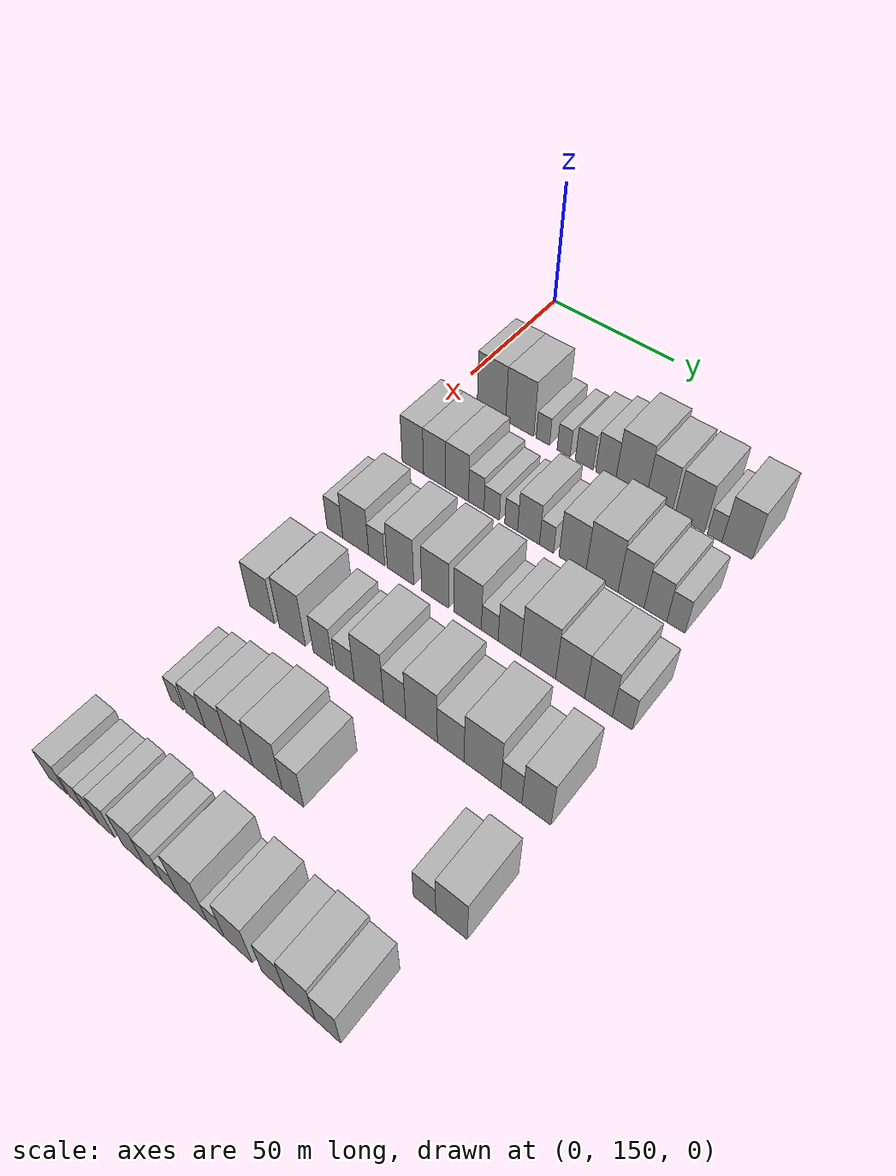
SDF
<sdf version="1.6">
 <world name="default">
  <model name="building_79">
   <static>1</static>
   <pose>50.0000 166.3033 0 0.000000 0.000000 0.000000</pose>
   <link name="link">
    <pose>0 0 12.00 0 0 0</pose>
    <collision name="collision"><geometry><box><size>20.0000 11.7883 24.0000</size></box></geometry></collision>
    <visual name="visual">
     <cast_shadows>0</cast_shadows>
     <geometry><box><size>20.0000 11.7883 24.0000</size></box></geometry>
     <material>
      <script>
       <uri>model://HANNAS_wall/materials/scripts</uri>
       <uri>model://HANNAS_wall/materials/textures</uri>
       <name>vrc/HANNAS_wall</name>
      </script>
     </material>
    </visual>
   </link>
  </model>
  <model name="building_80">
   <static>1</static>
   <pose>50.0000 177.9087 0 0.000000 0.000000 0.000000</pose>
   <link name="link">
    <pose>0 0 12.00 0 0 0</pose>
    <collision name="collision"><geometry><box><size>20.0000 11.4226 24.0000</size></box></geometry></collision>
    <visual name="visual">
     <cast_shadows>0</cast_shadows>
     <geometry><box><size>20.0000 11.4226 24.0000</size></box></geometry>
     <material>
      <script>
       <uri>model://HANNAS_wall/materials/scripts</uri>
       <uri>model://HANNAS_wall/materials/textures</uri>
       <name>vrc/HANNAS_wall</name>
      </script>
     </material>
    </visual>
   </link>
  </model>
  <model name="building_81">
   <static>1</static>
   <pose>50.0000 187.2695 0 0.000000 0.000000 0.000000</pose>
   <link name="link">
    <pose>0 0 6.00 0 0 0</pose>
    <collision name="collision"><geometry><box><size>20.0000 5.2989 12.0000</size></box></geometry></collision>
    <visual name="visual">
     <cast_shadows>0</cast_shadows>
     <geometry><box><size>20.0000 5.2989 12.0000</size></box></geometry>
     <material>
      <script>
       <uri>model://HANNAS_wall/materials/scripts</uri>
       <uri>model://HANNAS_wall/materials/textures</uri>
       <name>vrc/HANNAS_wall</name>
      </script>
     </material>
    </visual>
   </link>
  </model>
  <model name="building_82">
   <static>1</static>
   <pose>50.0000 195.4602 0 0.000000 0.000000 0.000000</pose>
   <link name="link">
    <pose>0 0 6.00 0 0 0</pose>
    <collision name="collision"><geometry><box><size>20.0000 5.0826 12.0000</size></box></geometry></collision>
    <visual name="visual">
     <cast_shadows>0</cast_shadows>
     <geometry><box><size>20.0000 5.0826 12.0000</size></box></geometry>
     <material>
      <script>
       <uri>model://HANNAS_wall/materials/scripts</uri>
       <uri>model://HANNAS_wall/materials/textures</uri>
       <name>vrc/HANNAS_wall</name>
      </script>
     </material>
    </visual>
   </link>
  </model>
  <model name="building_83">
   <static>1</static>
   <pose>50.0000 203.4119 0 0.000000 0.000000 0.000000</pose>
   <link name="link">
    <pose>0 0 7.50 0 0 0</pose>
    <collision name="collision"><geometry><box><size>20.0000 6.8208 15.0000</size></box></geometry></collision>
    <visual name="visual">
     <cast_shadows>0</cast_shadows>
     <geometry><box><size>20.0000 6.8208 15.0000</size></box></geometry>
     <material>
      <script>
       <uri>model://HANNAS_wall/materials/scripts</uri>
       <uri>model://HANNAS_wall/materials/textures</uri>
       <name>vrc/HANNAS_wall</name>
      </script>
     </material>
    </visual>
   </link>
  </model>
  <model name="building_84">
   <static>1</static>
   <pose>50.0000 211.5135 0 0.000000 0.000000 0.000000</pose>
   <link name="link">
    <pose>0 0 9.00 0 0 0</pose>
    <collision name="collision"><geometry><box><size>20.0000 7.3824 18.0000</size></box></geometry></collision>
    <visual name="visual">
     <cast_shadows>0</cast_shadows>
     <geometry><box><size>20.0000 7.3824 18.0000</size></box></geometry>
     <material>
      <script>
       <uri>model://HANNAS_wall/materials/scripts</uri>
       <uri>model://HANNAS_wall/materials/textures</uri>
       <name>vrc/HANNAS_wall</name>
      </script>
     </material>
    </visual>
   </link>
  </model>
  <model name="building_85">
   <static>1</static>
   <pose>50.0000 220.8676 0 0.000000 0.000000 0.000000</pose>
   <link name="link">
    <pose>0 0 12.00 0 0 0</pose>
    <collision name="collision"><geometry><box><size>20.0000 11.3259 24.0000</size></box></geometry></collision>
    <visual name="visual">
     <cast_shadows>0</cast_shadows>
     <geometry><box><size>20.0000 11.3259 24.0000</size></box></geometry>
     <material>
      <script>
       <uri>model://HANNAS_wall/materials/scripts</uri>
       <uri>model://HANNAS_wall/materials/textures</uri>
       <name>vrc/HANNAS_wall</name>
      </script>
     </material>
    </visual>
   </link>
  </model>
  <model name="building_86">
   <static>1</static>
   <pose>50.0000 231.1917 0 0.000000 0.000000 0.000000</pose>
   <link name="link">
    <pose>0 0 10.50 0 0 0</pose>
    <collision name="collision"><geometry><box><size>20.0000 9.3222 21.0000</size></box></geometry></collision>
    <visual name="visual">
     <cast_shadows>0</cast_shadows>
     <geometry><box><size>20.0000 9.3222 21.0000</size></box></geometry>
     <material>
      <script>
       <uri>model://HANNAS_wall/materials/scripts</uri>
       <uri>model://HANNAS_wall/materials/textures</uri>
       <name>vrc/HANNAS_wall</name>
      </script>
     </material>
    </visual>
   </link>
  </model>
  <model name="building_87">
   <static>1</static>
   <pose>50.0000 242.0632 0 0.000000 0.000000 0.000000</pose>
   <link name="link">
    <pose>0 0 10.50 0 0 0</pose>
    <collision name="collision"><geometry><box><size>20.0000 10.4208 21.0000</size></box></geometry></collision>
    <visual name="visual">
     <cast_shadows>0</cast_shadows>
     <geometry><box><size>20.0000 10.4208 21.0000</size></box></geometry>
     <material>
      <script>
       <uri>model://HANNAS_wall/materials/scripts</uri>
       <uri>model://HANNAS_wall/materials/textures</uri>
       <name>vrc/HANNAS_wall</name>
      </script>
     </material>
    </visual>
   </link>
  </model>
  <model name="building_88">
   <static>1</static>
   <pose>50.0000 250.7900 0 0.000000 0.000000 0.000000</pose>
   <link name="link">
    <pose>0 0 6.00 0 0 0</pose>
    <collision name="collision"><geometry><box><size>20.0000 5.0328 12.0000</size></box></geometry></collision>
    <visual name="visual">
     <cast_shadows>0</cast_shadows>
     <geometry><box><size>20.0000 5.0328 12.0000</size></box></geometry>
     <material>
      <script>
       <uri>model://HANNAS_wall/materials/scripts</uri>
       <uri>model://HANNAS_wall/materials/textures</uri>
       <name>vrc/HANNAS_wall</name>
      </script>
     </material>
    </visual>
   </link>
  </model>
  <model name="building_89">
   <static>1</static>
   <pose>50.0000 258.4701 0 0.000000 0.000000 0.000000</pose>
   <link name="link">
    <pose>0 0 10.50 0 0 0</pose>
    <collision name="collision"><geometry><box><size>20.0000 10.3274 21.0000</size></box></geometry></collision>
    <visual name="visual">
     <cast_shadows>0</cast_shadows>
     <geometry><box><size>20.0000 10.3274 21.0000</size></box></geometry>
     <material>
      <script>
       <uri>model://HANNAS_wall/materials/scripts</uri>
       <uri>model://HANNAS_wall/materials/textures</uri>
       <name>vrc/HANNAS_wall</name>
      </script>
     </material>
    </visual>
   </link>
  </model>
  <model name="building_207">
   <static>1</static>
   <pose>85.0000 161.7518 0 0.000000 0.000000 0.000000</pose>
   <link name="link">
    <pose>0 0 10.50 0 0 0</pose>
    <collision name="collision"><geometry><box><size>20.0000 8.8378 21.0000</size></box></geometry></collision>
    <visual name="visual">
     <cast_shadows>0</cast_shadows>
     <geometry><box><size>20.0000 8.8378 21.0000</size></box></geometry>
     <material>
      <script>
       <uri>model://HANNAS_wall/materials/scripts</uri>
       <uri>model://HANNAS_wall/materials/textures</uri>
       <name>vrc/HANNAS_wall</name>
      </script>
     </material>
    </visual>
   </link>
  </model>
  <model name="building_208">
   <static>1</static>
   <pose>85.0000 170.6619 0 0.000000 0.000000 0.000000</pose>
   <link name="link">
    <pose>0 0 10.50 0 0 0</pose>
    <collision name="collision"><geometry><box><size>20.0000 8.9824 21.0000</size></box></geometry></collision>
    <visual name="visual">
     <cast_shadows>0</cast_shadows>
     <geometry><box><size>20.0000 8.9824 21.0000</size></box></geometry>
     <material>
      <script>
       <uri>model://HANNAS_wall/materials/scripts</uri>
       <uri>model://HANNAS_wall/materials/textures</uri>
       <name>vrc/HANNAS_wall</name>
      </script>
     </material>
    </visual>
   </link>
  </model>
  <model name="building_209">
   <static>1</static>
   <pose>85.0000 179.6695 0 0.000000 0.000000 0.000000</pose>
   <link name="link">
    <pose>0 0 10.50 0 0 0</pose>
    <collision name="collision"><geometry><box><size>20.0000 9.0328 21.0000</size></box></geometry></collision>
    <visual name="visual">
     <cast_shadows>0</cast_shadows>
     <geometry><box><size>20.0000 9.0328 21.0000</size></box></geometry>
     <material>
      <script>
       <uri>model://HANNAS_wall/materials/scripts</uri>
       <uri>model://HANNAS_wall/materials/textures</uri>
       <name>vrc/HANNAS_wall</name>
      </script>
     </material>
    </visual>
   </link>
  </model>
  <model name="building_210">
   <static>1</static>
   <pose>85.0000 187.1967 0 0.000000 0.000000 0.000000</pose>
   <link name="link">
    <pose>0 0 7.50 0 0 0</pose>
    <collision name="collision"><geometry><box><size>20.0000 6.0217 15.0000</size></box></geometry></collision>
    <visual name="visual">
     <cast_shadows>0</cast_shadows>
     <geometry><box><size>20.0000 6.0217 15.0000</size></box></geometry>
     <material>
      <script>
       <uri>model://HANNAS_wall/materials/scripts</uri>
       <uri>model://HANNAS_wall/materials/textures</uri>
       <name>vrc/HANNAS_wall</name>
      </script>
     </material>
    </visual>
   </link>
  </model>
  <model name="building_211">
   <static>1</static>
   <pose>85.0000 193.1685 0 0.000000 0.000000 0.000000</pose>
   <link name="link">
    <pose>0 0 6.00 0 0 0</pose>
    <collision name="collision"><geometry><box><size>20.0000 5.9219 12.0000</size></box></geometry></collision>
    <visual name="visual">
     <cast_shadows>0</cast_shadows>
     <geometry><box><size>20.0000 5.9219 12.0000</size></box></geometry>
     <material>
      <script>
       <uri>model://HANNAS_wall/materials/scripts</uri>
       <uri>model://HANNAS_wall/materials/textures</uri>
       <name>vrc/HANNAS_wall</name>
      </script>
     </material>
    </visual>
   </link>
  </model>
  <model name="building_212">
   <static>1</static>
   <pose>85.0000 200.5698 0 0.000000 0.000000 0.000000</pose>
   <link name="link">
    <pose>0 0 6.00 0 0 0</pose>
    <collision name="collision"><geometry><box><size>20.0000 4.8807 12.0000</size></box></geometry></collision>
    <visual name="visual">
     <cast_shadows>0</cast_shadows>
     <geometry><box><size>20.0000 4.8807 12.0000</size></box></geometry>
     <material>
      <script>
       <uri>model://HANNAS_wall/materials/scripts</uri>
       <uri>model://HANNAS_wall/materials/textures</uri>
       <name>vrc/HANNAS_wall</name>
      </script>
     </material>
    </visual>
   </link>
  </model>
  <model name="building_213">
   <static>1</static>
   <pose>85.0000 207.0691 0 0.000000 0.000000 0.000000</pose>
   <link name="link">
    <pose>0 0 9.00 0 0 0</pose>
    <collision name="collision"><geometry><box><size>20.0000 8.1179 18.0000</size></box></geometry></collision>
    <visual name="visual">
     <cast_shadows>0</cast_shadows>
     <geometry><box><size>20.0000 8.1179 18.0000</size></box></geometry>
     <material>
      <script>
       <uri>model://HANNAS_wall/materials/scripts</uri>
       <uri>model://HANNAS_wall/materials/textures</uri>
       <name>vrc/HANNAS_wall</name>
      </script>
     </material>
    </visual>
   </link>
  </model>
  <model name="building_214">
   <static>1</static>
   <pose>85.0000 213.7032 0 0.000000 0.000000 0.000000</pose>
   <link name="link">
    <pose>0 0 6.00 0 0 0</pose>
    <collision name="collision"><geometry><box><size>20.0000 5.1504 12.0000</size></box></geometry></collision>
    <visual name="visual">
     <cast_shadows>0</cast_shadows>
     <geometry><box><size>20.0000 5.1504 12.0000</size></box></geometry>
     <material>
      <script>
       <uri>model://HANNAS_wall/materials/scripts</uri>
       <uri>model://HANNAS_wall/materials/textures</uri>
       <name>vrc/HANNAS_wall</name>
      </script>
     </material>
    </visual>
   </link>
  </model>
  <model name="building_215">
   <static>1</static>
   <pose>85.0000 223.0862 0 0.000000 0.000000 0.000000</pose>
   <link name="link">
    <pose>0 0 10.50 0 0 0</pose>
    <collision name="collision"><geometry><box><size>20.0000 9.6157 21.0000</size></box></geometry></collision>
    <visual name="visual">
     <cast_shadows>0</cast_shadows>
     <geometry><box><size>20.0000 9.6157 21.0000</size></box></geometry>
     <material>
      <script>
       <uri>model://HANNAS_wall/materials/scripts</uri>
       <uri>model://HANNAS_wall/materials/textures</uri>
       <name>vrc/HANNAS_wall</name>
      </script>
     </material>
    </visual>
   </link>
  </model>
  <model name="building_216">
   <static>1</static>
   <pose>85.0000 233.5058 0 0.000000 0.000000 0.000000</pose>
   <link name="link">
    <pose>0 0 12.00 0 0 0</pose>
    <collision name="collision"><geometry><box><size>20.0000 11.2235 24.0000</size></box></geometry></collision>
    <visual name="visual">
     <cast_shadows>0</cast_shadows>
     <geometry><box><size>20.0000 11.2235 24.0000</size></box></geometry>
     <material>
      <script>
       <uri>model://HANNAS_wall/materials/scripts</uri>
       <uri>model://HANNAS_wall/materials/textures</uri>
       <name>vrc/HANNAS_wall</name>
      </script>
     </material>
    </visual>
   </link>
  </model>
  <model name="building_217">
   <static>1</static>
   <pose>85.0000 243.5644 0 0.000000 0.000000 0.000000</pose>
   <link name="link">
    <pose>0 0 10.50 0 0 0</pose>
    <collision name="collision"><geometry><box><size>20.0000 8.8936 21.0000</size></box></geometry></collision>
    <visual name="visual">
     <cast_shadows>0</cast_shadows>
     <geometry><box><size>20.0000 8.8936 21.0000</size></box></geometry>
     <material>
      <script>
       <uri>model://HANNAS_wall/materials/scripts</uri>
       <uri>model://HANNAS_wall/materials/textures</uri>
       <name>vrc/HANNAS_wall</name>
      </script>
     </material>
    </visual>
   </link>
  </model>
  <model name="building_218">
   <static>1</static>
   <pose>85.0000 251.7752 0 0.000000 0.000000 0.000000</pose>
   <link name="link">
    <pose>0 0 9.00 0 0 0</pose>
    <collision name="collision"><geometry><box><size>20.0000 7.5281 18.0000</size></box></geometry></collision>
    <visual name="visual">
     <cast_shadows>0</cast_shadows>
     <geometry><box><size>20.0000 7.5281 18.0000</size></box></geometry>
     <material>
      <script>
       <uri>model://HANNAS_wall/materials/scripts</uri>
       <uri>model://HANNAS_wall/materials/textures</uri>
       <name>vrc/HANNAS_wall</name>
      </script>
     </material>
    </visual>
   </link>
  </model>
  <model name="building_219">
   <static>1</static>
   <pose>85.0000 258.5435 0 0.000000 0.000000 0.000000</pose>
   <link name="link">
    <pose>0 0 7.50 0 0 0</pose>
    <collision name="collision"><geometry><box><size>20.0000 6.0084 15.0000</size></box></geometry></collision>
    <visual name="visual">
     <cast_shadows>0</cast_shadows>
     <geometry><box><size>20.0000 6.0084 15.0000</size></box></geometry>
     <material>
      <script>
       <uri>model://HANNAS_wall/materials/scripts</uri>
       <uri>model://HANNAS_wall/materials/textures</uri>
       <name>vrc/HANNAS_wall</name>
      </script>
     </material>
    </visual>
   </link>
  </model>
  <model name="building_333">
   <static>1</static>
   <pose>120.0000 160.4133 0 0.000000 0.000000 0.000000</pose>
   <link name="link">
    <pose>0 0 7.50 0 0 0</pose>
    <collision name="collision"><geometry><box><size>20.0000 6.4655 15.0000</size></box></geometry></collision>
    <visual name="visual">
     <cast_shadows>0</cast_shadows>
     <geometry><box><size>20.0000 6.4655 15.0000</size></box></geometry>
     <material>
      <script>
       <uri>model://HANNAS_wall/materials/scripts</uri>
       <uri>model://HANNAS_wall/materials/textures</uri>
       <name>vrc/HANNAS_wall</name>
      </script>
     </material>
    </visual>
   </link>
  </model>
  <model name="building_334">
   <static>1</static>
   <pose>120.0000 168.8353 0 0.000000 0.000000 0.000000</pose>
   <link name="link">
    <pose>0 0 10.50 0 0 0</pose>
    <collision name="collision"><geometry><box><size>20.0000 10.3785 21.0000</size></box></geometry></collision>
    <visual name="visual">
     <cast_shadows>0</cast_shadows>
     <geometry><box><size>20.0000 10.3785 21.0000</size></box></geometry>
     <material>
      <script>
       <uri>model://HANNAS_wall/materials/scripts</uri>
       <uri>model://HANNAS_wall/materials/textures</uri>
       <name>vrc/HANNAS_wall</name>
      </script>
     </material>
    </visual>
   </link>
  </model>
  <model name="building_335">
   <static>1</static>
   <pose>120.0000 177.1607 0 0.000000 0.000000 0.000000</pose>
   <link name="link">
    <pose>0 0 7.50 0 0 0</pose>
    <collision name="collision"><geometry><box><size>20.0000 6.2723 15.0000</size></box></geometry></collision>
    <visual name="visual">
     <cast_shadows>0</cast_shadows>
     <geometry><box><size>20.0000 6.2723 15.0000</size></box></geometry>
     <material>
      <script>
       <uri>model://HANNAS_wall/materials/scripts</uri>
       <uri>model://HANNAS_wall/materials/textures</uri>
       <name>vrc/HANNAS_wall</name>
      </script>
     </material>
    </visual>
   </link>
  </model>
  <model name="building_336">
   <static>1</static>
   <pose>120.0000 186.3556 0 0.000000 0.000000 0.000000</pose>
   <link name="link">
    <pose>0 0 10.50 0 0 0</pose>
    <collision name="collision"><geometry><box><size>20.0000 10.1175 21.0000</size></box></geometry></collision>
    <visual name="visual">
     <cast_shadows>0</cast_shadows>
     <geometry><box><size>20.0000 10.1175 21.0000</size></box></geometry>
     <material>
      <script>
       <uri>model://HANNAS_wall/materials/scripts</uri>
       <uri>model://HANNAS_wall/materials/textures</uri>
       <name>vrc/HANNAS_wall</name>
      </script>
     </material>
    </visual>
   </link>
  </model>
  <model name="building_337">
   <static>1</static>
   <pose>120.0000 199.3939 0 0.000000 0.000000 0.000000</pose>
   <link name="link">
    <pose>0 0 10.50 0 0 0</pose>
    <collision name="collision"><geometry><box><size>20.0000 9.9592 21.0000</size></box></geometry></collision>
    <visual name="visual">
     <cast_shadows>0</cast_shadows>
     <geometry><box><size>20.0000 9.9592 21.0000</size></box></geometry>
     <material>
      <script>
       <uri>model://HANNAS_wall/materials/scripts</uri>
       <uri>model://HANNAS_wall/materials/textures</uri>
       <name>vrc/HANNAS_wall</name>
      </script>
     </material>
    </visual>
   </link>
  </model>
  <model name="building_338">
   <static>1</static>
   <pose>120.0000 211.2855 0 0.000000 0.000000 0.000000</pose>
   <link name="link">
    <pose>0 0 10.50 0 0 0</pose>
    <collision name="collision"><geometry><box><size>20.0000 9.8240 21.0000</size></box></geometry></collision>
    <visual name="visual">
     <cast_shadows>0</cast_shadows>
     <geometry><box><size>20.0000 9.8240 21.0000</size></box></geometry>
     <material>
      <script>
       <uri>model://HANNAS_wall/materials/scripts</uri>
       <uri>model://HANNAS_wall/materials/textures</uri>
       <name>vrc/HANNAS_wall</name>
      </script>
     </material>
    </visual>
   </link>
  </model>
  <model name="building_339">
   <static>1</static>
   <pose>120.0000 219.1743 0 0.000000 0.000000 0.000000</pose>
   <link name="link">
    <pose>0 0 6.00 0 0 0</pose>
    <collision name="collision"><geometry><box><size>20.0000 5.9536 12.0000</size></box></geometry></collision>
    <visual name="visual">
     <cast_shadows>0</cast_shadows>
     <geometry><box><size>20.0000 5.9536 12.0000</size></box></geometry>
     <material>
      <script>
       <uri>model://HANNAS_wall/materials/scripts</uri>
       <uri>model://HANNAS_wall/materials/textures</uri>
       <name>vrc/HANNAS_wall</name>
      </script>
     </material>
    </visual>
   </link>
  </model>
  <model name="building_340">
   <static>1</static>
   <pose>120.0000 226.0874 0 0.000000 0.000000 0.000000</pose>
   <link name="link">
    <pose>0 0 9.00 0 0 0</pose>
    <collision name="collision"><geometry><box><size>20.0000 7.8726 18.0000</size></box></geometry></collision>
    <visual name="visual">
     <cast_shadows>0</cast_shadows>
     <geometry><box><size>20.0000 7.8726 18.0000</size></box></geometry>
     <material>
      <script>
       <uri>model://HANNAS_wall/materials/scripts</uri>
       <uri>model://HANNAS_wall/materials/textures</uri>
       <name>vrc/HANNAS_wall</name>
      </script>
     </material>
    </visual>
   </link>
  </model>
  <model name="building_341">
   <static>1</static>
   <pose>120.0000 235.8815 0 0.000000 0.000000 0.000000</pose>
   <link name="link">
    <pose>0 0 12.00 0 0 0</pose>
    <collision name="collision"><geometry><box><size>20.0000 11.7156 24.0000</size></box></geometry></collision>
    <visual name="visual">
     <cast_shadows>0</cast_shadows>
     <geometry><box><size>20.0000 11.7156 24.0000</size></box></geometry>
     <material>
      <script>
       <uri>model://HANNAS_wall/materials/scripts</uri>
       <uri>model://HANNAS_wall/materials/textures</uri>
       <name>vrc/HANNAS_wall</name>
      </script>
     </material>
    </visual>
   </link>
  </model>
  <model name="building_342">
   <static>1</static>
   <pose>120.0000 246.5385 0 0.000000 0.000000 0.000000</pose>
   <link name="link">
    <pose>0 0 10.50 0 0 0</pose>
    <collision name="collision"><geometry><box><size>20.0000 9.5984 21.0000</size></box></geometry></collision>
    <visual name="visual">
     <cast_shadows>0</cast_shadows>
     <geometry><box><size>20.0000 9.5984 21.0000</size></box></geometry>
     <material>
      <script>
       <uri>model://HANNAS_wall/materials/scripts</uri>
       <uri>model://HANNAS_wall/materials/textures</uri>
       <name>vrc/HANNAS_wall</name>
      </script>
     </material>
    </visual>
   </link>
  </model>
  <model name="building_343">
   <static>1</static>
   <pose>120.0000 255.8148 0 0.000000 0.000000 0.000000</pose>
   <link name="link">
    <pose>0 0 10.50 0 0 0</pose>
    <collision name="collision"><geometry><box><size>20.0000 8.9542 21.0000</size></box></geometry></collision>
    <visual name="visual">
     <cast_shadows>0</cast_shadows>
     <geometry><box><size>20.0000 8.9542 21.0000</size></box></geometry>
     <material>
      <script>
       <uri>model://HANNAS_wall/materials/scripts</uri>
       <uri>model://HANNAS_wall/materials/textures</uri>
       <name>vrc/HANNAS_wall</name>
      </script>
     </material>
    </visual>
   </link>
  </model>
  <model name="building_344">
   <static>1</static>
   <pose>120.0000 263.4176 0 0.000000 0.000000 0.000000</pose>
   <link name="link">
    <pose>0 0 7.50 0 0 0</pose>
    <collision name="collision"><geometry><box><size>20.0000 6.2515 15.0000</size></box></geometry></collision>
    <visual name="visual">
     <cast_shadows>0</cast_shadows>
     <geometry><box><size>20.0000 6.2515 15.0000</size></box></geometry>
     <material>
      <script>
       <uri>model://HANNAS_wall/materials/scripts</uri>
       <uri>model://HANNAS_wall/materials/textures</uri>
       <name>vrc/HANNAS_wall</name>
      </script>
     </material>
    </visual>
   </link>
  </model>
  <model name="building_458">
   <static>1</static>
   <pose>155.0000 164.3413 0 0.000000 0.000000 0.000000</pose>
   <link name="link">
    <pose>0 0 10.50 0 0 0</pose>
    <collision name="collision"><geometry><box><size>20.0000 9.9316 21.0000</size></box></geometry></collision>
    <visual name="visual">
     <cast_shadows>0</cast_shadows>
     <geometry><box><size>20.0000 9.9316 21.0000</size></box></geometry>
     <material>
      <script>
       <uri>model://HANNAS_wall/materials/scripts</uri>
       <uri>model://HANNAS_wall/materials/textures</uri>
       <name>vrc/HANNAS_wall</name>
      </script>
     </material>
    </visual>
   </link>
  </model>
  <model name="building_459">
   <static>1</static>
   <pose>155.0000 176.3386 0 0.000000 0.000000 0.000000</pose>
   <link name="link">
    <pose>0 0 12.00 0 0 0</pose>
    <collision name="collision"><geometry><box><size>20.0000 10.0629 24.0000</size></box></geometry></collision>
    <visual name="visual">
     <cast_shadows>0</cast_shadows>
     <geometry><box><size>20.0000 10.0629 24.0000</size></box></geometry>
     <material>
      <script>
       <uri>model://HANNAS_wall/materials/scripts</uri>
       <uri>model://HANNAS_wall/materials/textures</uri>
       <name>vrc/HANNAS_wall</name>
      </script>
     </material>
    </visual>
   </link>
  </model>
  <model name="building_460">
   <static>1</static>
   <pose>155.0000 188.0422 0 0.000000 0.000000 0.000000</pose>
   <link name="link">
    <pose>0 0 9.00 0 0 0</pose>
    <collision name="collision"><geometry><box><size>20.0000 7.3443 18.0000</size></box></geometry></collision>
    <visual name="visual">
     <cast_shadows>0</cast_shadows>
     <geometry><box><size>20.0000 7.3443 18.0000</size></box></geometry>
     <material>
      <script>
       <uri>model://HANNAS_wall/materials/scripts</uri>
       <uri>model://HANNAS_wall/materials/textures</uri>
       <name>vrc/HANNAS_wall</name>
      </script>
     </material>
    </visual>
   </link>
  </model>
  <model name="building_461">
   <static>1</static>
   <pose>155.0000 196.1790 0 0.000000 0.000000 0.000000</pose>
   <link name="link">
    <pose>0 0 7.50 0 0 0</pose>
    <collision name="collision"><geometry><box><size>20.0000 6.9294 15.0000</size></box></geometry></collision>
    <visual name="visual">
     <cast_shadows>0</cast_shadows>
     <geometry><box><size>20.0000 6.9294 15.0000</size></box></geometry>
     <material>
      <script>
       <uri>model://HANNAS_wall/materials/scripts</uri>
       <uri>model://HANNAS_wall/materials/textures</uri>
       <name>vrc/HANNAS_wall</name>
      </script>
     </material>
    </visual>
   </link>
  </model>
  <model name="building_462">
   <static>1</static>
   <pose>155.0000 204.9037 0 0.000000 0.000000 0.000000</pose>
   <link name="link">
    <pose>0 0 12.00 0 0 0</pose>
    <collision name="collision"><geometry><box><size>20.0000 10.5199 24.0000</size></box></geometry></collision>
    <visual name="visual">
     <cast_shadows>0</cast_shadows>
     <geometry><box><size>20.0000 10.5199 24.0000</size></box></geometry>
     <material>
      <script>
       <uri>model://HANNAS_wall/materials/scripts</uri>
       <uri>model://HANNAS_wall/materials/textures</uri>
       <name>vrc/HANNAS_wall</name>
      </script>
     </material>
    </visual>
   </link>
  </model>
  <model name="building_463">
   <static>1</static>
   <pose>155.0000 214.0423 0 0.000000 0.000000 0.000000</pose>
   <link name="link">
    <pose>0 0 9.00 0 0 0</pose>
    <collision name="collision"><geometry><box><size>20.0000 7.7574 18.0000</size></box></geometry></collision>
    <visual name="visual">
     <cast_shadows>0</cast_shadows>
     <geometry><box><size>20.0000 7.7574 18.0000</size></box></geometry>
     <material>
      <script>
       <uri>model://HANNAS_wall/materials/scripts</uri>
       <uri>model://HANNAS_wall/materials/textures</uri>
       <name>vrc/HANNAS_wall</name>
      </script>
     </material>
    </visual>
   </link>
  </model>
  <model name="building_464">
   <static>1</static>
   <pose>155.0000 223.3328 0 0.000000 0.000000 0.000000</pose>
   <link name="link">
    <pose>0 0 12.00 0 0 0</pose>
    <collision name="collision"><geometry><box><size>20.0000 10.8237 24.0000</size></box></geometry></collision>
    <visual name="visual">
     <cast_shadows>0</cast_shadows>
     <geometry><box><size>20.0000 10.8237 24.0000</size></box></geometry>
     <material>
      <script>
       <uri>model://HANNAS_wall/materials/scripts</uri>
       <uri>model://HANNAS_wall/materials/textures</uri>
       <name>vrc/HANNAS_wall</name>
      </script>
     </material>
    </visual>
   </link>
  </model>
  <model name="building_465">
   <static>1</static>
   <pose>155.0000 233.1871 0 0.000000 0.000000 0.000000</pose>
   <link name="link">
    <pose>0 0 9.00 0 0 0</pose>
    <collision name="collision"><geometry><box><size>20.0000 8.8849 18.0000</size></box></geometry></collision>
    <visual name="visual">
     <cast_shadows>0</cast_shadows>
     <geometry><box><size>20.0000 8.8849 18.0000</size></box></geometry>
     <material>
      <script>
       <uri>model://HANNAS_wall/materials/scripts</uri>
       <uri>model://HANNAS_wall/materials/textures</uri>
       <name>vrc/HANNAS_wall</name>
      </script>
     </material>
    </visual>
   </link>
  </model>
  <model name="building_466">
   <static>1</static>
   <pose>155.0000 243.5518 0 0.000000 0.000000 0.000000</pose>
   <link name="link">
    <pose>0 0 12.00 0 0 0</pose>
    <collision name="collision"><geometry><box><size>20.0000 11.8445 24.0000</size></box></geometry></collision>
    <visual name="visual">
     <cast_shadows>0</cast_shadows>
     <geometry><box><size>20.0000 11.8445 24.0000</size></box></geometry>
     <material>
      <script>
       <uri>model://HANNAS_wall/materials/scripts</uri>
       <uri>model://HANNAS_wall/materials/textures</uri>
       <name>vrc/HANNAS_wall</name>
      </script>
     </material>
    </visual>
   </link>
  </model>
  <model name="building_467">
   <static>1</static>
   <pose>155.0000 252.8069 0 0.000000 0.000000 0.000000</pose>
   <link name="link">
    <pose>0 0 7.50 0 0 0</pose>
    <collision name="collision"><geometry><box><size>20.0000 6.6656 15.0000</size></box></geometry></collision>
    <visual name="visual">
     <cast_shadows>0</cast_shadows>
     <geometry><box><size>20.0000 6.6656 15.0000</size></box></geometry>
     <material>
      <script>
       <uri>model://HANNAS_wall/materials/scripts</uri>
       <uri>model://HANNAS_wall/materials/textures</uri>
       <name>vrc/HANNAS_wall</name>
      </script>
     </material>
    </visual>
   </link>
  </model>
  <model name="building_468">
   <static>1</static>
   <pose>155.0000 260.6258 0 0.000000 0.000000 0.000000</pose>
   <link name="link">
    <pose>0 0 10.50 0 0 0</pose>
    <collision name="collision"><geometry><box><size>20.0000 8.9723 21.0000</size></box></geometry></collision>
    <visual name="visual">
     <cast_shadows>0</cast_shadows>
     <geometry><box><size>20.0000 8.9723 21.0000</size></box></geometry>
     <material>
      <script>
       <uri>model://HANNAS_wall/materials/scripts</uri>
       <uri>model://HANNAS_wall/materials/textures</uri>
       <name>vrc/HANNAS_wall</name>
      </script>
     </material>
    </visual>
   </link>
  </model>
  <model name="building_588">
   <static>1</static>
   <pose>190.0000 167.3395 0 0.000000 0.000000 0.000000</pose>
   <link name="link">
    <pose>0 0 6.00 0 0 0</pose>
    <collision name="collision"><geometry><box><size>20.0000 4.9407 12.0000</size></box></geometry></collision>
    <visual name="visual">
     <cast_shadows>0</cast_shadows>
     <geometry><box><size>20.0000 4.9407 12.0000</size></box></geometry>
     <material>
      <script>
       <uri>model://HANNAS_wall/materials/scripts</uri>
       <uri>model://HANNAS_wall/materials/textures</uri>
       <name>vrc/HANNAS_wall</name>
      </script>
     </material>
    </visual>
   </link>
  </model>
  <model name="building_589">
   <static>1</static>
   <pose>190.0000 174.4918 0 0.000000 0.000000 0.000000</pose>
   <link name="link">
    <pose>0 0 7.50 0 0 0</pose>
    <collision name="collision"><geometry><box><size>20.0000 7.3638 15.0000</size></box></geometry></collision>
    <visual name="visual">
     <cast_shadows>0</cast_shadows>
     <geometry><box><size>20.0000 7.3638 15.0000</size></box></geometry>
     <material>
      <script>
       <uri>model://HANNAS_wall/materials/scripts</uri>
       <uri>model://HANNAS_wall/materials/textures</uri>
       <name>vrc/HANNAS_wall</name>
      </script>
     </material>
    </visual>
   </link>
  </model>
  <model name="building_590">
   <static>1</static>
   <pose>190.0000 182.5475 0 0.000000 0.000000 0.000000</pose>
   <link name="link">
    <pose>0 0 9.00 0 0 0</pose>
    <collision name="collision"><geometry><box><size>20.0000 8.7476 18.0000</size></box></geometry></collision>
    <visual name="visual">
     <cast_shadows>0</cast_shadows>
     <geometry><box><size>20.0000 8.7476 18.0000</size></box></geometry>
     <material>
      <script>
       <uri>model://HANNAS_wall/materials/scripts</uri>
       <uri>model://HANNAS_wall/materials/textures</uri>
       <name>vrc/HANNAS_wall</name>
      </script>
     </material>
    </visual>
   </link>
  </model>
  <model name="building_591">
   <static>1</static>
   <pose>190.0000 191.4054 0 0.000000 0.000000 0.000000</pose>
   <link name="link">
    <pose>0 0 10.50 0 0 0</pose>
    <collision name="collision"><geometry><box><size>20.0000 8.9682 21.0000</size></box></geometry></collision>
    <visual name="visual">
     <cast_shadows>0</cast_shadows>
     <geometry><box><size>20.0000 8.9682 21.0000</size></box></geometry>
     <material>
      <script>
       <uri>model://HANNAS_wall/materials/scripts</uri>
       <uri>model://HANNAS_wall/materials/textures</uri>
       <name>vrc/HANNAS_wall</name>
      </script>
     </material>
    </visual>
   </link>
  </model>
  <model name="building_592">
   <static>1</static>
   <pose>190.0000 201.1980 0 0.000000 0.000000 0.000000</pose>
   <link name="link">
    <pose>0 0 12.00 0 0 0</pose>
    <collision name="collision"><geometry><box><size>20.0000 10.6168 24.0000</size></box></geometry></collision>
    <visual name="visual">
     <cast_shadows>0</cast_shadows>
     <geometry><box><size>20.0000 10.6168 24.0000</size></box></geometry>
     <material>
      <script>
       <uri>model://HANNAS_wall/materials/scripts</uri>
       <uri>model://HANNAS_wall/materials/textures</uri>
       <name>vrc/HANNAS_wall</name>
      </script>
     </material>
    </visual>
   </link>
  </model>
  <model name="building_593">
   <static>1</static>
   <pose>190.0000 210.2555 0 0.000000 0.000000 0.000000</pose>
   <link name="link">
    <pose>0 0 9.00 0 0 0</pose>
    <collision name="collision"><geometry><box><size>20.0000 7.4983 18.0000</size></box></geometry></collision>
    <visual name="visual">
     <cast_shadows>0</cast_shadows>
     <geometry><box><size>20.0000 7.4983 18.0000</size></box></geometry>
     <material>
      <script>
       <uri>model://HANNAS_wall/materials/scripts</uri>
       <uri>model://HANNAS_wall/materials/textures</uri>
       <name>vrc/HANNAS_wall</name>
      </script>
     </material>
    </visual>
   </link>
  </model>
  <model name="building_594">
   <static>1</static>
   <pose>190.0000 253.3035 0 0.000000 0.000000 0.000000</pose>
   <link name="link">
    <pose>0 0 7.50 0 0 0</pose>
    <collision name="collision"><geometry><box><size>20.0000 6.8659 15.0000</size></box></geometry></collision>
    <visual name="visual">
     <cast_shadows>0</cast_shadows>
     <geometry><box><size>20.0000 6.8659 15.0000</size></box></geometry>
     <material>
      <script>
       <uri>model://HANNAS_wall/materials/scripts</uri>
       <uri>model://HANNAS_wall/materials/textures</uri>
       <name>vrc/HANNAS_wall</name>
      </script>
     </material>
    </visual>
   </link>
  </model>
  <model name="building_595">
   <static>1</static>
   <pose>190.0000 261.4694 0 0.000000 0.000000 0.000000</pose>
   <link name="link">
    <pose>0 0 10.50 0 0 0</pose>
    <collision name="collision"><geometry><box><size>20.0000 9.4658 21.0000</size></box></geometry></collision>
    <visual name="visual">
     <cast_shadows>0</cast_shadows>
     <geometry><box><size>20.0000 9.4658 21.0000</size></box></geometry>
     <material>
      <script>
       <uri>model://HANNAS_wall/materials/scripts</uri>
       <uri>model://HANNAS_wall/materials/textures</uri>
       <name>vrc/HANNAS_wall</name>
      </script>
     </material>
    </visual>
   </link>
  </model>
  <model name="building_706">
   <static>1</static>
   <pose>225.0000 161.1895 0 0.000000 0.000000 0.000000</pose>
   <link name="link">
    <pose>0 0 7.50 0 0 0</pose>
    <collision name="collision"><geometry><box><size>20.0000 7.4271 15.0000</size></box></geometry></collision>
    <visual name="visual">
     <cast_shadows>0</cast_shadows>
     <geometry><box><size>20.0000 7.4271 15.0000</size></box></geometry>
     <material>
      <script>
       <uri>model://HANNAS_wall/materials/scripts</uri>
       <uri>model://HANNAS_wall/materials/textures</uri>
       <name>vrc/HANNAS_wall</name>
      </script>
     </material>
    </visual>
   </link>
  </model>
  <model name="building_707">
   <static>1</static>
   <pose>225.0000 168.7174 0 0.000000 0.000000 0.000000</pose>
   <link name="link">
    <pose>0 0 6.00 0 0 0</pose>
    <collision name="collision"><geometry><box><size>20.0000 5.6287 12.0000</size></box></geometry></collision>
    <visual name="visual">
     <cast_shadows>0</cast_shadows>
     <geometry><box><size>20.0000 5.6287 12.0000</size></box></geometry>
     <material>
      <script>
       <uri>model://HANNAS_wall/materials/scripts</uri>
       <uri>model://HANNAS_wall/materials/textures</uri>
       <name>vrc/HANNAS_wall</name>
      </script>
     </material>
    </visual>
   </link>
  </model>
  <model name="building_708">
   <static>1</static>
   <pose>225.0000 174.3030 0 0.000000 0.000000 0.000000</pose>
   <link name="link">
    <pose>0 0 6.00 0 0 0</pose>
    <collision name="collision"><geometry><box><size>20.0000 5.5424 12.0000</size></box></geometry></collision>
    <visual name="visual">
     <cast_shadows>0</cast_shadows>
     <geometry><box><size>20.0000 5.5424 12.0000</size></box></geometry>
     <material>
      <script>
       <uri>model://HANNAS_wall/materials/scripts</uri>
       <uri>model://HANNAS_wall/materials/textures</uri>
       <name>vrc/HANNAS_wall</name>
      </script>
     </material>
    </visual>
   </link>
  </model>
  <model name="building_709">
   <static>1</static>
   <pose>225.0000 180.1165 0 0.000000 0.000000 0.000000</pose>
   <link name="link">
    <pose>0 0 7.50 0 0 0</pose>
    <collision name="collision"><geometry><box><size>20.0000 6.0845 15.0000</size></box></geometry></collision>
    <visual name="visual">
     <cast_shadows>0</cast_shadows>
     <geometry><box><size>20.0000 6.0845 15.0000</size></box></geometry>
     <material>
      <script>
       <uri>model://HANNAS_wall/materials/scripts</uri>
       <uri>model://HANNAS_wall/materials/textures</uri>
       <name>vrc/HANNAS_wall</name>
      </script>
     </material>
    </visual>
   </link>
  </model>
  <model name="building_710">
   <static>1</static>
   <pose>225.0000 190.0395 0 0.000000 0.000000 0.000000</pose>
   <link name="link">
    <pose>0 0 9.00 0 0 0</pose>
    <collision name="collision"><geometry><box><size>20.0000 7.7615 18.0000</size></box></geometry></collision>
    <visual name="visual">
     <cast_shadows>0</cast_shadows>
     <geometry><box><size>20.0000 7.7615 18.0000</size></box></geometry>
     <material>
      <script>
       <uri>model://HANNAS_wall/materials/scripts</uri>
       <uri>model://HANNAS_wall/materials/textures</uri>
       <name>vrc/HANNAS_wall</name>
      </script>
     </material>
    </visual>
   </link>
  </model>
  <model name="building_711">
   <static>1</static>
   <pose>225.0000 197.1833 0 0.000000 0.000000 0.000000</pose>
   <link name="link">
    <pose>0 0 7.50 0 0 0</pose>
    <collision name="collision"><geometry><box><size>20.0000 6.5262 15.0000</size></box></geometry></collision>
    <visual name="visual">
     <cast_shadows>0</cast_shadows>
     <geometry><box><size>20.0000 6.5262 15.0000</size></box></geometry>
     <material>
      <script>
       <uri>model://HANNAS_wall/materials/scripts</uri>
       <uri>model://HANNAS_wall/materials/textures</uri>
       <name>vrc/HANNAS_wall</name>
      </script>
     </material>
    </visual>
   </link>
  </model>
  <model name="building_712">
   <static>1</static>
   <pose>225.0000 203.3012 0 0.000000 0.000000 0.000000</pose>
   <link name="link">
    <pose>0 0 6.00 0 0 0</pose>
    <collision name="collision"><geometry><box><size>20.0000 5.7096 12.0000</size></box></geometry></collision>
    <visual name="visual">
     <cast_shadows>0</cast_shadows>
     <geometry><box><size>20.0000 5.7096 12.0000</size></box></geometry>
     <material>
      <script>
       <uri>model://HANNAS_wall/materials/scripts</uri>
       <uri>model://HANNAS_wall/materials/textures</uri>
       <name>vrc/HANNAS_wall</name>
      </script>
     </material>
    </visual>
   </link>
  </model>
  <model name="building_713">
   <static>1</static>
   <pose>225.0000 211.1975 0 0.000000 0.000000 0.000000</pose>
   <link name="link">
    <pose>0 0 12.00 0 0 0</pose>
    <collision name="collision"><geometry><box><size>20.0000 10.0829 24.0000</size></box></geometry></collision>
    <visual name="visual">
     <cast_shadows>0</cast_shadows>
     <geometry><box><size>20.0000 10.0829 24.0000</size></box></geometry>
     <material>
      <script>
       <uri>model://HANNAS_wall/materials/scripts</uri>
       <uri>model://HANNAS_wall/materials/textures</uri>
       <name>vrc/HANNAS_wall</name>
      </script>
     </material>
    </visual>
   </link>
  </model>
  <model name="building_714">
   <static>1</static>
   <pose>225.0000 219.0506 0 0.000000 0.000000 0.000000</pose>
   <link name="link">
    <pose>0 0 6.00 0 0 0</pose>
    <collision name="collision"><geometry><box><size>20.0000 5.6234 12.0000</size></box></geometry></collision>
    <visual name="visual">
     <cast_shadows>0</cast_shadows>
     <geometry><box><size>20.0000 5.6234 12.0000</size></box></geometry>
     <material>
      <script>
       <uri>model://HANNAS_wall/materials/scripts</uri>
       <uri>model://HANNAS_wall/materials/textures</uri>
       <name>vrc/HANNAS_wall</name>
      </script>
     </material>
    </visual>
   </link>
  </model>
  <model name="building_715">
   <static>1</static>
   <pose>225.0000 226.4753 0 0.000000 0.000000 0.000000</pose>
   <link name="link">
    <pose>0 0 10.50 0 0 0</pose>
    <collision name="collision"><geometry><box><size>20.0000 9.2260 21.0000</size></box></geometry></collision>
    <visual name="visual">
     <cast_shadows>0</cast_shadows>
     <geometry><box><size>20.0000 9.2260 21.0000</size></box></geometry>
     <material>
      <script>
       <uri>model://HANNAS_wall/materials/scripts</uri>
       <uri>model://HANNAS_wall/materials/textures</uri>
       <name>vrc/HANNAS_wall</name>
      </script>
     </material>
    </visual>
   </link>
  </model>
  <model name="building_716">
   <static>1</static>
   <pose>225.0000 237.7694 0 0.000000 0.000000 0.000000</pose>
   <link name="link">
    <pose>0 0 9.00 0 0 0</pose>
    <collision name="collision"><geometry><box><size>20.0000 7.3621 18.0000</size></box></geometry></collision>
    <visual name="visual">
     <cast_shadows>0</cast_shadows>
     <geometry><box><size>20.0000 7.3621 18.0000</size></box></geometry>
     <material>
      <script>
       <uri>model://HANNAS_wall/materials/scripts</uri>
       <uri>model://HANNAS_wall/materials/textures</uri>
       <name>vrc/HANNAS_wall</name>
      </script>
     </material>
    </visual>
   </link>
  </model>
  <model name="building_717">
   <static>1</static>
   <pose>225.0000 246.0424 0 0.000000 0.000000 0.000000</pose>
   <link name="link">
    <pose>0 0 10.50 0 0 0</pose>
    <collision name="collision"><geometry><box><size>20.0000 9.1840 21.0000</size></box></geometry></collision>
    <visual name="visual">
     <cast_shadows>0</cast_shadows>
     <geometry><box><size>20.0000 9.1840 21.0000</size></box></geometry>
     <material>
      <script>
       <uri>model://HANNAS_wall/materials/scripts</uri>
       <uri>model://HANNAS_wall/materials/textures</uri>
       <name>vrc/HANNAS_wall</name>
      </script>
     </material>
    </visual>
   </link>
  </model>
  <model name="building_718">
   <static>1</static>
   <pose>225.0000 254.5133 0 0.000000 0.000000 0.000000</pose>
   <link name="link">
    <pose>0 0 9.00 0 0 0</pose>
    <collision name="collision"><geometry><box><size>20.0000 7.7576 18.0000</size></box></geometry></collision>
    <visual name="visual">
     <cast_shadows>0</cast_shadows>
     <geometry><box><size>20.0000 7.7576 18.0000</size></box></geometry>
     <material>
      <script>
       <uri>model://HANNAS_wall/materials/scripts</uri>
       <uri>model://HANNAS_wall/materials/textures</uri>
       <name>vrc/HANNAS_wall</name>
      </script>
     </material>
    </visual>
   </link>
  </model>
 </world>
</sdf>
